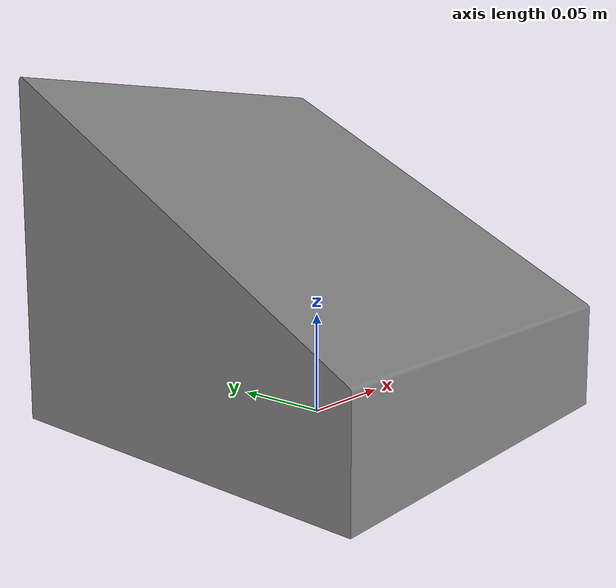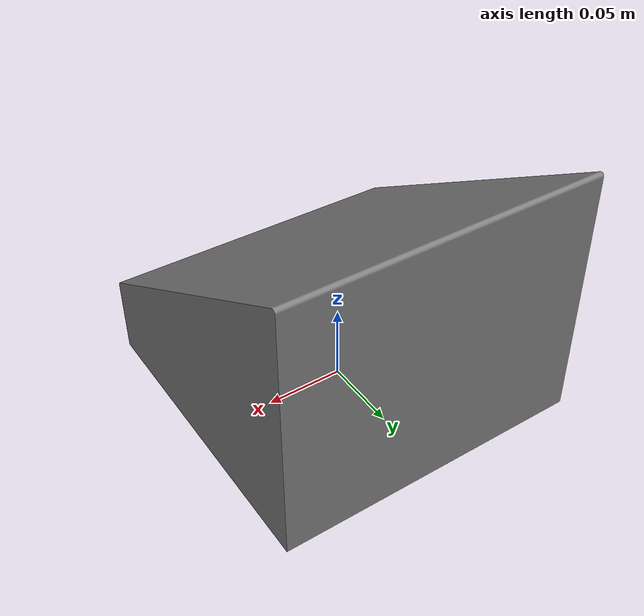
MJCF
<mujoco model="incline_30">
  <asset>
    <mesh file="meshes/incline_30.stl" name="incline_mesh" scale="0.002 0.002 0.002"/>
  </asset>
  <worldbody>
    <body>
      <body name="object">
        <geom pos="0 0 0" mesh="incline_mesh" type="mesh" solimp="0.998 0.998 0.001" solref="0.001 1" density="50" friction="0.95 0.3 0.1" group="0"/>
        <site rgba="0 0 0 0" size="0.005" pos="0 0 0" name="test_site_2"/>
      </body>
      <site rgba="0 0 0 0" size="0.005" pos="0 0 0" name="bottom_site"/>
      <site rgba="0 0 0 0" size="0.005" pos="0 0 0" name="top_site"/>
      <site rgba="0 0 0 0" size="0.005" pos="0. 0. 0" name="horizontal_radius_site"/>
    </body>
  </worldbody>
</mujoco>
